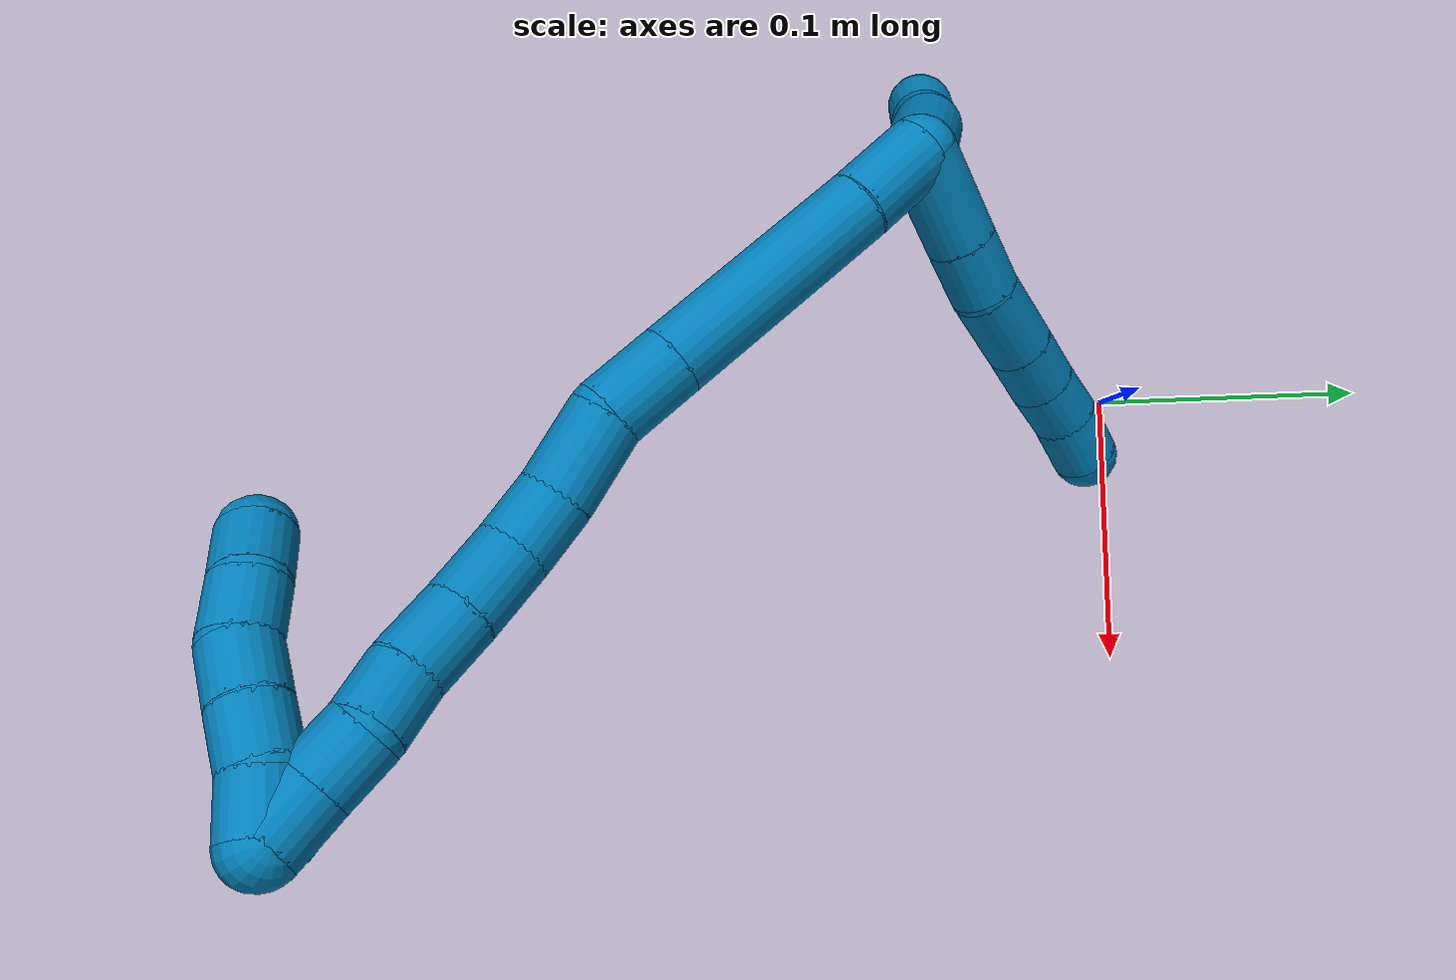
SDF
<sdf version="1.7">
 <world name="default">
  <model name="9">
   <static>0</static>
   <link name="9">
    <collision name="collision-cylinder-e_1_2_8">
     <pose>-0.015703 -0.006328 0.006768 0.751819 -1.03771 -0.443349</pose>
     <geometry><cylinder><radius>0.0125</radius><length>0.036466</length></cylinder></geometry>
     <surface>
      <friction><ode><mu>1.16</mu><mu2>1.16</mu2><slip1>0</slip1><slip2>0</slip2></ode></friction>
      <contact><ode><kp>1e+06</kp><kd>1</kd><max_vel>0</max_vel><min_depth>0.001</min_depth></ode></contact>
     </surface>
    </collision>
    <visual name="visual-cylinder-e_1_2_8">
     <pose>-0.015703 -0.006328 0.006768 0.751819 -1.03771 -0.443349</pose>
     <geometry><cylinder><radius>0.0125</radius><length>0.036466</length></cylinder></geometry>
     <material><ambient>0 0.490196 0.709804 1</ambient></material>
    </visual>
    <collision name="collision-cylinder-e_2_8_9">
     <pose>-0.040973 -0.016247 0.017644 0.71833 -1.0525 -0.429466</pose>
     <geometry><cylinder><radius>0.0125</radius><length>0.022026</length></cylinder></geometry>
     <surface>
      <friction><ode><mu>1.16</mu><mu2>1.16</mu2><slip1>0</slip1><slip2>0</slip2></ode></friction>
      <contact><ode><kp>1e+06</kp><kd>1</kd><max_vel>0</max_vel><min_depth>0.001</min_depth></ode></contact>
     </surface>
    </collision>
    <visual name="visual-cylinder-e_2_8_9">
     <pose>-0.040973 -0.016247 0.017644 0.71833 -1.0525 -0.429466</pose>
     <geometry><cylinder><radius>0.0125</radius><length>0.022026</length></cylinder></geometry>
     <material><ambient>0 0.490196 0.709804 1</ambient></material>
    </visual>
    <collision name="collision-cylinder-e_3_9_10">
     <pose>-0.063991 -0.022041 0.027043 0.39458 -1.16797 -0.262687</pose>
     <geometry><cylinder><radius>0.0125</radius><length>0.029244</length></cylinder></geometry>
     <surface>
      <friction><ode><mu>1.16</mu><mu2>1.16</mu2><slip1>0</slip1><slip2>0</slip2></ode></friction>
      <contact><ode><kp>1e+06</kp><kd>1</kd><max_vel>0</max_vel><min_depth>0.001</min_depth></ode></contact>
     </surface>
    </collision>
    <visual name="visual-cylinder-e_3_9_10">
     <pose>-0.063991 -0.022041 0.027043 0.39458 -1.16797 -0.262687</pose>
     <geometry><cylinder><radius>0.0125</radius><length>0.029244</length></cylinder></geometry>
     <material><ambient>0 0.490196 0.709804 1</ambient></material>
    </visual>
    <collision name="collision-cylinder-e_4_10_11">
     <pose>-0.086974 -0.025782 0.036247 0.374291 -1.15546 -0.245657</pose>
     <geometry><cylinder><radius>0.0125</radius><length>0.020835</length></cylinder></geometry>
     <surface>
      <friction><ode><mu>1.16</mu><mu2>1.16</mu2><slip1>0</slip1><slip2>0</slip2></ode></friction>
      <contact><ode><kp>1e+06</kp><kd>1</kd><max_vel>0</max_vel><min_depth>0.001</min_depth></ode></contact>
     </surface>
    </collision>
    <visual name="visual-cylinder-e_4_10_11">
     <pose>-0.086974 -0.025782 0.036247 0.374291 -1.15546 -0.245657</pose>
     <geometry><cylinder><radius>0.0125</radius><length>0.020835</length></cylinder></geometry>
     <material><ambient>0 0.490196 0.709804 1</ambient></material>
    </visual>
    <collision name="collision-cylinder-e_5_11_12">
     <pose>-0.105856 -0.028966 0.043438 0.465747 -1.19686 -0.320653</pose>
     <geometry><cylinder><radius>0.0125</radius><length>0.020087</length></cylinder></geometry>
     <surface>
      <friction><ode><mu>1.16</mu><mu2>1.16</mu2><slip1>0</slip1><slip2>0</slip2></ode></friction>
      <contact><ode><kp>1e+06</kp><kd>1</kd><max_vel>0</max_vel><min_depth>0.001</min_depth></ode></contact>
     </surface>
    </collision>
    <visual name="visual-cylinder-e_5_11_12">
     <pose>-0.105856 -0.028966 0.043438 0.465747 -1.19686 -0.320653</pose>
     <geometry><cylinder><radius>0.0125</radius><length>0.020087</length></cylinder></geometry>
     <material><ambient>0 0.490196 0.709804 1</ambient></material>
    </visual>
    <collision name="collision-cylinder-e_6_12_6">
     <pose>-0.124738 -0.033473 0.050565 0.638851 -1.10478 -0.40224</pose>
     <geometry><cylinder><radius>0.0125</radius><length>0.021342</length></cylinder></geometry>
     <surface>
      <friction><ode><mu>1.16</mu><mu2>1.16</mu2><slip1>0</slip1><slip2>0</slip2></ode></friction>
      <contact><ode><kp>1e+06</kp><kd>1</kd><max_vel>0</max_vel><min_depth>0.001</min_depth></ode></contact>
     </surface>
    </collision>
    <visual name="visual-cylinder-e_6_12_6">
     <pose>-0.124738 -0.033473 0.050565 0.638851 -1.10478 -0.40224</pose>
     <geometry><cylinder><radius>0.0125</radius><length>0.021342</length></cylinder></geometry>
     <material><ambient>0 0.490196 0.709804 1</ambient></material>
    </visual>
    <collision name="collision-cylinder-e_1_2_13">
     <pose>-0.010575 0.020161 0.01244 -1.01795 -0.419857 0.236677</pose>
     <geometry><cylinder><radius>0.0125</radius><length>0.051886</length></cylinder></geometry>
     <surface>
      <friction><ode><mu>1.16</mu><mu2>1.16</mu2><slip1>0</slip1><slip2>0</slip2></ode></friction>
      <contact><ode><kp>1e+06</kp><kd>1</kd><max_vel>0</max_vel><min_depth>0.001</min_depth></ode></contact>
     </surface>
    </collision>
    <visual name="visual-cylinder-e_1_2_13">
     <pose>-0.010575 0.020161 0.01244 -1.01795 -0.419857 0.236677</pose>
     <geometry><cylinder><radius>0.0125</radius><length>0.051886</length></cylinder></geometry>
     <material><ambient>0 0.490196 0.709804 1</ambient></material>
    </visual>
    <collision name="collision-cylinder-e_2_13_14">
     <pose>-0.025817 0.04915 0.032179 -0.879886 -0.386829 0.18387</pose>
     <geometry><cylinder><radius>0.0125</radius><length>0.024738</length></cylinder></geometry>
     <surface>
      <friction><ode><mu>1.16</mu><mu2>1.16</mu2><slip1>0</slip1><slip2>0</slip2></ode></friction>
      <contact><ode><kp>1e+06</kp><kd>1</kd><max_vel>0</max_vel><min_depth>0.001</min_depth></ode></contact>
     </surface>
    </collision>
    <visual name="visual-cylinder-e_2_13_14">
     <pose>-0.025817 0.04915 0.032179 -0.879886 -0.386829 0.18387</pose>
     <geometry><cylinder><radius>0.0125</radius><length>0.024738</length></cylinder></geometry>
     <material><ambient>0 0.490196 0.709804 1</ambient></material>
    </visual>
    <collision name="collision-cylinder-e_3_14_5">
     <pose>-0.033313 0.067797 0.045152 -1.04686 -0.244585 0.141627</pose>
     <geometry><cylinder><radius>0.0125</radius><length>0.023376</length></cylinder></geometry>
     <surface>
      <friction><ode><mu>1.16</mu><mu2>1.16</mu2><slip1>0</slip1><slip2>0</slip2></ode></friction>
      <contact><ode><kp>1e+06</kp><kd>1</kd><max_vel>0</max_vel><min_depth>0.001</min_depth></ode></contact>
     </surface>
    </collision>
    <visual name="visual-cylinder-e_3_14_5">
     <pose>-0.033313 0.067797 0.045152 -1.04686 -0.244585 0.141627</pose>
     <geometry><cylinder><radius>0.0125</radius><length>0.023376</length></cylinder></geometry>
     <material><ambient>0 0.490196 0.709804 1</ambient></material>
    </visual>
    <collision name="collision-cylinder-e_1_2_15">
     <pose>0.00696 -0.012397 0.006194 1.10746 0.465444 0.290999</pose>
     <geometry><cylinder><radius>0.0125</radius><length>0.031016</length></cylinder></geometry>
     <surface>
      <friction><ode><mu>1.16</mu><mu2>1.16</mu2><slip1>0</slip1><slip2>0</slip2></ode></friction>
      <contact><ode><kp>1e+06</kp><kd>1</kd><max_vel>0</max_vel><min_depth>0.001</min_depth></ode></contact>
     </surface>
    </collision>
    <visual name="visual-cylinder-e_1_2_15">
     <pose>0.00696 -0.012397 0.006194 1.10746 0.465444 0.290999</pose>
     <geometry><cylinder><radius>0.0125</radius><length>0.031016</length></cylinder></geometry>
     <material><ambient>0 0.490196 0.709804 1</ambient></material>
    </visual>
    <collision name="collision-cylinder-e_2_15_16">
     <pose>0.032629 -0.056227 0.031361 1.02771 0.471253 0.269384</pose>
     <geometry><cylinder><radius>0.0125</radius><length>0.082414</length></cylinder></geometry>
     <surface>
      <friction><ode><mu>1.16</mu><mu2>1.16</mu2><slip1>0</slip1><slip2>0</slip2></ode></friction>
      <contact><ode><kp>1e+06</kp><kd>1</kd><max_vel>0</max_vel><min_depth>0.001</min_depth></ode></contact>
     </surface>
    </collision>
    <visual name="visual-cylinder-e_2_15_16">
     <pose>0.032629 -0.056227 0.031361 1.02771 0.471253 0.269384</pose>
     <geometry><cylinder><radius>0.0125</radius><length>0.082414</length></cylinder></geometry>
     <material><ambient>0 0.490196 0.709804 1</ambient></material>
    </visual>
    <collision name="collision-cylinder-e_3_16_17">
     <pose>0.057468 -0.098008 0.056584 1.02754 0.469401 0.268247</pose>
     <geometry><cylinder><radius>0.0125</radius><length>0.027109</length></cylinder></geometry>
     <surface>
      <friction><ode><mu>1.16</mu><mu2>1.16</mu2><slip1>0</slip1><slip2>0</slip2></ode></friction>
      <contact><ode><kp>1e+06</kp><kd>1</kd><max_vel>0</max_vel><min_depth>0.001</min_depth></ode></contact>
     </surface>
    </collision>
    <visual name="visual-cylinder-e_3_16_17">
     <pose>0.057468 -0.098008 0.056584 1.02754 0.469401 0.268247</pose>
     <geometry><cylinder><radius>0.0125</radius><length>0.027109</length></cylinder></geometry>
     <material><ambient>0 0.490196 0.709804 1</ambient></material>
    </visual>
    <collision name="collision-cylinder-e_4_17_18">
     <pose>0.065819 -0.121097 0.069903 1.0642 0.151155 0.089102</pose>
     <geometry><cylinder><radius>0.0125</radius><length>0.029478</length></cylinder></geometry>
     <surface>
      <friction><ode><mu>1.16</mu><mu2>1.16</mu2><slip1>0</slip1><slip2>0</slip2></ode></friction>
      <contact><ode><kp>1e+06</kp><kd>1</kd><max_vel>0</max_vel><min_depth>0.001</min_depth></ode></contact>
     </surface>
    </collision>
    <visual name="visual-cylinder-e_4_17_18">
     <pose>0.065819 -0.121097 0.069903 1.0642 0.151155 0.089102</pose>
     <geometry><cylinder><radius>0.0125</radius><length>0.029478</length></cylinder></geometry>
     <material><ambient>0 0.490196 0.709804 1</ambient></material>
    </visual>
    <collision name="collision-cylinder-e_5_18_19">
     <pose>0.071128 -0.143193 0.081042 1.16052 0.294058 0.193561</pose>
     <geometry><cylinder><radius>0.0125</radius><length>0.02132</length></cylinder></geometry>
     <surface>
      <friction><ode><mu>1.16</mu><mu2>1.16</mu2><slip1>0</slip1><slip2>0</slip2></ode></friction>
      <contact><ode><kp>1e+06</kp><kd>1</kd><max_vel>0</max_vel><min_depth>0.001</min_depth></ode></contact>
     </surface>
    </collision>
    <visual name="visual-cylinder-e_5_18_19">
     <pose>0.071128 -0.143193 0.081042 1.16052 0.294058 0.193561</pose>
     <geometry><cylinder><radius>0.0125</radius><length>0.02132</length></cylinder></geometry>
     <material><ambient>0 0.490196 0.709804 1</ambient></material>
    </visual>
    <collision name="collision-cylinder-e_6_19_20">
     <pose>0.079058 -0.163841 0.087477 1.36424 0.397228 0.324062</pose>
     <geometry><cylinder><radius>0.0125</radius><length>0.025024</length></cylinder></geometry>
     <surface>
      <friction><ode><mu>1.16</mu><mu2>1.16</mu2><slip1>0</slip1><slip2>0</slip2></ode></friction>
      <contact><ode><kp>1e+06</kp><kd>1</kd><max_vel>0</max_vel><min_depth>0.001</min_depth></ode></contact>
     </surface>
    </collision>
    <visual name="visual-cylinder-e_6_19_20">
     <pose>0.079058 -0.163841 0.087477 1.36424 0.397228 0.324062</pose>
     <geometry><cylinder><radius>0.0125</radius><length>0.025024</length></cylinder></geometry>
     <material><ambient>0 0.490196 0.709804 1</ambient></material>
    </visual>
    <collision name="collision-cylinder-e_7_20_21">
     <pose>0.088778 -0.185427 0.092065 1.3582 0.433917 0.352162</pose>
     <geometry><cylinder><radius>0.0125</radius><length>0.023211</length></cylinder></geometry>
     <surface>
      <friction><ode><mu>1.16</mu><mu2>1.16</mu2><slip1>0</slip1><slip2>0</slip2></ode></friction>
      <contact><ode><kp>1e+06</kp><kd>1</kd><max_vel>0</max_vel><min_depth>0.001</min_depth></ode></contact>
     </surface>
    </collision>
    <visual name="visual-cylinder-e_7_20_21">
     <pose>0.088778 -0.185427 0.092065 1.3582 0.433917 0.352162</pose>
     <geometry><cylinder><radius>0.0125</radius><length>0.023211</length></cylinder></geometry>
     <material><ambient>0 0.490196 0.709804 1</ambient></material>
    </visual>
    <collision name="collision-cylinder-e_8_21_22">
     <pose>0.096756 -0.205197 0.09549 1.44461 0.313693 0.276918</pose>
     <geometry><cylinder><radius>0.0125</radius><length>0.020088</length></cylinder></geometry>
     <surface>
      <friction><ode><mu>1.16</mu><mu2>1.16</mu2><slip1>0</slip1><slip2>0</slip2></ode></friction>
      <contact><ode><kp>1e+06</kp><kd>1</kd><max_vel>0</max_vel><min_depth>0.001</min_depth></ode></contact>
     </surface>
    </collision>
    <visual name="visual-cylinder-e_8_21_22">
     <pose>0.096756 -0.205197 0.09549 1.44461 0.313693 0.276918</pose>
     <geometry><cylinder><radius>0.0125</radius><length>0.020088</length></cylinder></geometry>
     <material><ambient>0 0.490196 0.709804 1</ambient></material>
    </visual>
    <collision name="collision-cylinder-e_9_22_23">
     <pose>0.10356 -0.223069 0.100851 1.1108 0.376581 0.2354</pose>
     <geometry><cylinder><radius>0.0125</radius><length>0.020148</length></cylinder></geometry>
     <surface>
      <friction><ode><mu>1.16</mu><mu2>1.16</mu2><slip1>0</slip1><slip2>0</slip2></ode></friction>
      <contact><ode><kp>1e+06</kp><kd>1</kd><max_vel>0</max_vel><min_depth>0.001</min_depth></ode></contact>
     </surface>
    </collision>
    <visual name="visual-cylinder-e_9_22_23">
     <pose>0.10356 -0.223069 0.100851 1.1108 0.376581 0.2354</pose>
     <geometry><cylinder><radius>0.0125</radius><length>0.020148</length></cylinder></geometry>
     <material><ambient>0 0.490196 0.709804 1</ambient></material>
    </visual>
    <collision name="collision-cylinder-e_10_23_1">
     <pose>0.111121 -0.240329 0.10792 1.25357 0.391835 0.285499</pose>
     <geometry><cylinder><radius>0.0125</radius><length>0.020193</length></cylinder></geometry>
     <surface>
      <friction><ode><mu>1.16</mu><mu2>1.16</mu2><slip1>0</slip1><slip2>0</slip2></ode></friction>
      <contact><ode><kp>1e+06</kp><kd>1</kd><max_vel>0</max_vel><min_depth>0.001</min_depth></ode></contact>
     </surface>
    </collision>
    <visual name="visual-cylinder-e_10_23_1">
     <pose>0.111121 -0.240329 0.10792 1.25357 0.391835 0.285499</pose>
     <geometry><cylinder><radius>0.0125</radius><length>0.020193</length></cylinder></geometry>
     <material><ambient>0 0.490196 0.709804 1</ambient></material>
    </visual>
    <collision name="collision-cylinder-e_1_1_24">
     <pose>0.111501 -0.245424 0.119416 -0.413863 -0.354895 0.075262</pose>
     <geometry><cylinder><radius>0.0125</radius><length>0.02</length></cylinder></geometry>
     <surface>
      <friction><ode><mu>1.16</mu><mu2>1.16</mu2><slip1>0</slip1><slip2>0</slip2></ode></friction>
      <contact><ode><kp>1e+06</kp><kd>1</kd><max_vel>0</max_vel><min_depth>0.001</min_depth></ode></contact>
     </surface>
    </collision>
    <visual name="visual-cylinder-e_1_1_24">
     <pose>0.111501 -0.245424 0.119416 -0.413863 -0.354895 0.075262</pose>
     <geometry><cylinder><radius>0.0125</radius><length>0.02</length></cylinder></geometry>
     <material><ambient>0 0.490196 0.709804 1</ambient></material>
    </visual>
    <collision name="collision-cylinder-e_2_24_25">
     <pose>0.105476 -0.238312 0.137075 -0.352856 -0.257862 0.04622</pose>
     <geometry><cylinder><radius>0.0125</radius><length>0.02</length></cylinder></geometry>
     <surface>
      <friction><ode><mu>1.16</mu><mu2>1.16</mu2><slip1>0</slip1><slip2>0</slip2></ode></friction>
      <contact><ode><kp>1e+06</kp><kd>1</kd><max_vel>0</max_vel><min_depth>0.001</min_depth></ode></contact>
     </surface>
    </collision>
    <visual name="visual-cylinder-e_2_24_25">
     <pose>0.105476 -0.238312 0.137075 -0.352856 -0.257862 0.04622</pose>
     <geometry><cylinder><radius>0.0125</radius><length>0.02</length></cylinder></geometry>
     <material><ambient>0 0.490196 0.709804 1</ambient></material>
    </visual>
    <collision name="collision-cylinder-e_3_25_26">
     <pose>0.098266 -0.231874 0.154437 -0.357524 -0.484737 0.089284</pose>
     <geometry><cylinder><radius>0.0125</radius><length>0.02</length></cylinder></geometry>
     <surface>
      <friction><ode><mu>1.16</mu><mu2>1.16</mu2><slip1>0</slip1><slip2>0</slip2></ode></friction>
      <contact><ode><kp>1e+06</kp><kd>1</kd><max_vel>0</max_vel><min_depth>0.001</min_depth></ode></contact>
     </surface>
    </collision>
    <visual name="visual-cylinder-e_3_25_26">
     <pose>0.098266 -0.231874 0.154437 -0.357524 -0.484737 0.089284</pose>
     <geometry><cylinder><radius>0.0125</radius><length>0.02</length></cylinder></geometry>
     <material><ambient>0 0.490196 0.709804 1</ambient></material>
    </visual>
    <collision name="collision-cylinder-e_4_26_27">
     <pose>0.091975 -0.225081 0.171873 -0.384062 -0.163903 0.031936</pose>
     <geometry><cylinder><radius>0.0125</radius><length>0.02</length></cylinder></geometry>
     <surface>
      <friction><ode><mu>1.16</mu><mu2>1.16</mu2><slip1>0</slip1><slip2>0</slip2></ode></friction>
      <contact><ode><kp>1e+06</kp><kd>1</kd><max_vel>0</max_vel><min_depth>0.001</min_depth></ode></contact>
     </surface>
    </collision>
    <visual name="visual-cylinder-e_4_26_27">
     <pose>0.091975 -0.225081 0.171873 -0.384062 -0.163903 0.031936</pose>
     <geometry><cylinder><radius>0.0125</radius><length>0.02</length></cylinder></geometry>
     <material><ambient>0 0.490196 0.709804 1</ambient></material>
    </visual>
    <collision name="collision-cylinder-e_5_27_4">
     <pose>0.088256 -0.218518 0.190371 -0.297417 -0.210228 0.031609</pose>
     <geometry><cylinder><radius>0.0125</radius><length>0.02</length></cylinder></geometry>
     <surface>
      <friction><ode><mu>1.16</mu><mu2>1.16</mu2><slip1>0</slip1><slip2>0</slip2></ode></friction>
      <contact><ode><kp>1e+06</kp><kd>1</kd><max_vel>0</max_vel><min_depth>0.001</min_depth></ode></contact>
     </surface>
    </collision>
    <visual name="visual-cylinder-e_5_27_4">
     <pose>0.088256 -0.218518 0.190371 -0.297417 -0.210228 0.031609</pose>
     <geometry><cylinder><radius>0.0125</radius><length>0.02</length></cylinder></geometry>
     <material><ambient>0 0.490196 0.709804 1</ambient></material>
    </visual>
    <collision name="collision-cylinder-e_1_1_28">
     <pose>0.117472 -0.239511 0.110876 -1.56616 0.252237 -0.251083</pose>
     <geometry><cylinder><radius>0.0125</radius><length>0.02</length></cylinder></geometry>
     <surface>
      <friction><ode><mu>1.16</mu><mu2>1.16</mu2><slip1>0</slip1><slip2>0</slip2></ode></friction>
      <contact><ode><kp>1e+06</kp><kd>1</kd><max_vel>0</max_vel><min_depth>0.001</min_depth></ode></contact>
     </surface>
    </collision>
    <visual name="visual-cylinder-e_1_1_28">
     <pose>0.117472 -0.239511 0.110876 -1.56616 0.252237 -0.251083</pose>
     <geometry><cylinder><radius>0.0125</radius><length>0.02</length></cylinder></geometry>
     <material><ambient>0 0.490196 0.709804 1</ambient></material>
    </visual>
    <collision name="collision-cylinder-e_2_28_29">
     <pose>0.123546 -0.220758 0.113142 -1.3306 0.365946 -0.288365</pose>
     <geometry><cylinder><radius>0.0125</radius><length>0.02</length></cylinder></geometry>
     <surface>
      <friction><ode><mu>1.16</mu><mu2>1.16</mu2><slip1>0</slip1><slip2>0</slip2></ode></friction>
      <contact><ode><kp>1e+06</kp><kd>1</kd><max_vel>0</max_vel><min_depth>0.001</min_depth></ode></contact>
     </surface>
    </collision>
    <visual name="visual-cylinder-e_2_28_29">
     <pose>0.123546 -0.220758 0.113142 -1.3306 0.365946 -0.288365</pose>
     <geometry><cylinder><radius>0.0125</radius><length>0.02</length></cylinder></geometry>
     <material><ambient>0 0.490196 0.709804 1</ambient></material>
    </visual>
    <collision name="collision-cylinder-e_3_29_30">
     <pose>0.130325 -0.202602 0.118046 -1.28377 0.325761 -0.24445</pose>
     <geometry><cylinder><radius>0.0125</radius><length>0.02</length></cylinder></geometry>
     <surface>
      <friction><ode><mu>1.16</mu><mu2>1.16</mu2><slip1>0</slip1><slip2>0</slip2></ode></friction>
      <contact><ode><kp>1e+06</kp><kd>1</kd><max_vel>0</max_vel><min_depth>0.001</min_depth></ode></contact>
     </surface>
    </collision>
    <visual name="visual-cylinder-e_3_29_30">
     <pose>0.130325 -0.202602 0.118046 -1.28377 0.325761 -0.24445</pose>
     <geometry><cylinder><radius>0.0125</radius><length>0.02</length></cylinder></geometry>
     <material><ambient>0 0.490196 0.709804 1</ambient></material>
    </visual>
    <collision name="collision-cylinder-e_4_30_31">
     <pose>0.13427 -0.18366 0.122249 -1.41771 0.07455 -0.063937</pose>
     <geometry><cylinder><radius>0.0125</radius><length>0.02</length></cylinder></geometry>
     <surface>
      <friction><ode><mu>1.16</mu><mu2>1.16</mu2><slip1>0</slip1><slip2>0</slip2></ode></friction>
      <contact><ode><kp>1e+06</kp><kd>1</kd><max_vel>0</max_vel><min_depth>0.001</min_depth></ode></contact>
     </surface>
    </collision>
    <visual name="visual-cylinder-e_4_30_31">
     <pose>0.13427 -0.18366 0.122249 -1.41771 0.07455 -0.063937</pose>
     <geometry><cylinder><radius>0.0125</radius><length>0.02</length></cylinder></geometry>
     <material><ambient>0 0.490196 0.709804 1</ambient></material>
    </visual>
    <collision name="collision-cylinder-e_5_31_3">
     <pose>0.1352 -0.164544 0.12754 -1.18414 0.018558 -0.012482</pose>
     <geometry><cylinder><radius>0.0125</radius><length>0.02</length></cylinder></geometry>
     <surface>
      <friction><ode><mu>1.16</mu><mu2>1.16</mu2><slip1>0</slip1><slip2>0</slip2></ode></friction>
      <contact><ode><kp>1e+06</kp><kd>1</kd><max_vel>0</max_vel><min_depth>0.001</min_depth></ode></contact>
     </surface>
    </collision>
    <visual name="visual-cylinder-e_5_31_3">
     <pose>0.1352 -0.164544 0.12754 -1.18414 0.018558 -0.012482</pose>
     <geometry><cylinder><radius>0.0125</radius><length>0.02</length></cylinder></geometry>
     <material><ambient>0 0.490196 0.709804 1</ambient></material>
    </visual>
    <collision name="collision-sphere-3">
     <pose>0.135386 -0.155284 0.13131 0 -0 0</pose>
     <geometry><sphere><radius>0.0125</radius></sphere></geometry>
     <surface>
      <friction><ode><mu>1.16</mu><mu2>1.16</mu2><slip1>0</slip1><slip2>0</slip2></ode></friction>
      <contact><ode><kp>1e+06</kp><kd>1</kd><max_vel>0</max_vel><min_depth>0.001</min_depth></ode></contact>
     </surface>
    </collision>
    <visual name="visual-sphere-3">
     <pose>0.135386 -0.155284 0.13131 0 -0 0</pose>
     <geometry><sphere><radius>0.0125</radius></sphere></geometry>
     <material><ambient>0 0.490196 0.709804 1</ambient></material>
    </visual>
    <collision name="collision-sphere-31">
     <pose>0.135015 -0.173804 0.12377 0 -0 0</pose>
     <geometry><sphere><radius>0.0125</radius></sphere></geometry>
     <surface>
      <friction><ode><mu>1.16</mu><mu2>1.16</mu2><slip1>0</slip1><slip2>0</slip2></ode></friction>
      <contact><ode><kp>1e+06</kp><kd>1</kd><max_vel>0</max_vel><min_depth>0.001</min_depth></ode></contact>
     </surface>
    </collision>
    <visual name="visual-sphere-31">
     <pose>0.135015 -0.173804 0.12377 0 -0 0</pose>
     <geometry><sphere><radius>0.0125</radius></sphere></geometry>
     <material><ambient>0 0.490196 0.709804 1</ambient></material>
    </visual>
    <collision name="collision-sphere-30">
     <pose>0.133525 -0.193515 0.120728 0 -0 0</pose>
     <geometry><sphere><radius>0.0125</radius></sphere></geometry>
     <surface>
      <friction><ode><mu>1.16</mu><mu2>1.16</mu2><slip1>0</slip1><slip2>0</slip2></ode></friction>
      <contact><ode><kp>1e+06</kp><kd>1</kd><max_vel>0</max_vel><min_depth>0.001</min_depth></ode></contact>
     </surface>
    </collision>
    <visual name="visual-sphere-30">
     <pose>0.133525 -0.193515 0.120728 0 -0 0</pose>
     <geometry><sphere><radius>0.0125</radius></sphere></geometry>
     <material><ambient>0 0.490196 0.709804 1</ambient></material>
    </visual>
    <collision name="collision-sphere-29">
     <pose>0.127124 -0.211688 0.115364 0 -0 0</pose>
     <geometry><sphere><radius>0.0125</radius></sphere></geometry>
     <surface>
      <friction><ode><mu>1.16</mu><mu2>1.16</mu2><slip1>0</slip1><slip2>0</slip2></ode></friction>
      <contact><ode><kp>1e+06</kp><kd>1</kd><max_vel>0</max_vel><min_depth>0.001</min_depth></ode></contact>
     </surface>
    </collision>
    <visual name="visual-sphere-29">
     <pose>0.127124 -0.211688 0.115364 0 -0 0</pose>
     <geometry><sphere><radius>0.0125</radius></sphere></geometry>
     <material><ambient>0 0.490196 0.709804 1</ambient></material>
    </visual>
    <collision name="collision-sphere-28">
     <pose>0.119968 -0.229828 0.110921 0 -0 0</pose>
     <geometry><sphere><radius>0.0125</radius></sphere></geometry>
     <surface>
      <friction><ode><mu>1.16</mu><mu2>1.16</mu2><slip1>0</slip1><slip2>0</slip2></ode></friction>
      <contact><ode><kp>1e+06</kp><kd>1</kd><max_vel>0</max_vel><min_depth>0.001</min_depth></ode></contact>
     </surface>
    </collision>
    <visual name="visual-sphere-28">
     <pose>0.119968 -0.229828 0.110921 0 -0 0</pose>
     <geometry><sphere><radius>0.0125</radius></sphere></geometry>
     <material><ambient>0 0.490196 0.709804 1</ambient></material>
    </visual>
    <collision name="collision-sphere-4">
     <pose>0.08617 -0.215652 0.199721 0 -0 0</pose>
     <geometry><sphere><radius>0.0125</radius></sphere></geometry>
     <surface>
      <friction><ode><mu>1.16</mu><mu2>1.16</mu2><slip1>0</slip1><slip2>0</slip2></ode></friction>
      <contact><ode><kp>1e+06</kp><kd>1</kd><max_vel>0</max_vel><min_depth>0.001</min_depth></ode></contact>
     </surface>
    </collision>
    <visual name="visual-sphere-4">
     <pose>0.08617 -0.215652 0.199721 0 -0 0</pose>
     <geometry><sphere><radius>0.0125</radius></sphere></geometry>
     <material><ambient>0 0.490196 0.709804 1</ambient></material>
    </visual>
    <collision name="collision-sphere-27">
     <pose>0.090343 -0.221384 0.18102 0 -0 0</pose>
     <geometry><sphere><radius>0.0125</radius></sphere></geometry>
     <surface>
      <friction><ode><mu>1.16</mu><mu2>1.16</mu2><slip1>0</slip1><slip2>0</slip2></ode></friction>
      <contact><ode><kp>1e+06</kp><kd>1</kd><max_vel>0</max_vel><min_depth>0.001</min_depth></ode></contact>
     </surface>
    </collision>
    <visual name="visual-sphere-27">
     <pose>0.090343 -0.221384 0.18102 0 -0 0</pose>
     <geometry><sphere><radius>0.0125</radius></sphere></geometry>
     <material><ambient>0 0.490196 0.709804 1</ambient></material>
    </visual>
    <collision name="collision-sphere-26">
     <pose>0.093607 -0.228777 0.162726 0 -0 0</pose>
     <geometry><sphere><radius>0.0125</radius></sphere></geometry>
     <surface>
      <friction><ode><mu>1.16</mu><mu2>1.16</mu2><slip1>0</slip1><slip2>0</slip2></ode></friction>
      <contact><ode><kp>1e+06</kp><kd>1</kd><max_vel>0</max_vel><min_depth>0.001</min_depth></ode></contact>
     </surface>
    </collision>
    <visual name="visual-sphere-26">
     <pose>0.093607 -0.228777 0.162726 0 -0 0</pose>
     <geometry><sphere><radius>0.0125</radius></sphere></geometry>
     <material><ambient>0 0.490196 0.709804 1</ambient></material>
    </visual>
    <collision name="collision-sphere-25">
     <pose>0.102926 -0.23497 0.146149 0 -0 0</pose>
     <geometry><sphere><radius>0.0125</radius></sphere></geometry>
     <surface>
      <friction><ode><mu>1.16</mu><mu2>1.16</mu2><slip1>0</slip1><slip2>0</slip2></ode></friction>
      <contact><ode><kp>1e+06</kp><kd>1</kd><max_vel>0</max_vel><min_depth>0.001</min_depth></ode></contact>
     </surface>
    </collision>
    <visual name="visual-sphere-25">
     <pose>0.102926 -0.23497 0.146149 0 -0 0</pose>
     <geometry><sphere><radius>0.0125</radius></sphere></geometry>
     <material><ambient>0 0.490196 0.709804 1</ambient></material>
    </visual>
    <collision name="collision-sphere-24">
     <pose>0.108026 -0.241653 0.128002 0 -0 0</pose>
     <geometry><sphere><radius>0.0125</radius></sphere></geometry>
     <surface>
      <friction><ode><mu>1.16</mu><mu2>1.16</mu2><slip1>0</slip1><slip2>0</slip2></ode></friction>
      <contact><ode><kp>1e+06</kp><kd>1</kd><max_vel>0</max_vel><min_depth>0.001</min_depth></ode></contact>
     </surface>
    </collision>
    <visual name="visual-sphere-24">
     <pose>0.108026 -0.241653 0.128002 0 -0 0</pose>
     <geometry><sphere><radius>0.0125</radius></sphere></geometry>
     <material><ambient>0 0.490196 0.709804 1</ambient></material>
    </visual>
    <collision name="collision-sphere-1">
     <pose>0.114976 -0.249195 0.110831 0 -0 0</pose>
     <geometry><sphere><radius>0.0125</radius></sphere></geometry>
     <surface>
      <friction><ode><mu>1.16</mu><mu2>1.16</mu2><slip1>0</slip1><slip2>0</slip2></ode></friction>
      <contact><ode><kp>1e+06</kp><kd>1</kd><max_vel>0</max_vel><min_depth>0.001</min_depth></ode></contact>
     </surface>
    </collision>
    <visual name="visual-sphere-1">
     <pose>0.114976 -0.249195 0.110831 0 -0 0</pose>
     <geometry><sphere><radius>0.0125</radius></sphere></geometry>
     <material><ambient>0 0.490196 0.709804 1</ambient></material>
    </visual>
    <collision name="collision-sphere-23">
     <pose>0.107265 -0.231463 0.10501 0 -0 0</pose>
     <geometry><sphere><radius>0.0125</radius></sphere></geometry>
     <surface>
      <friction><ode><mu>1.16</mu><mu2>1.16</mu2><slip1>0</slip1><slip2>0</slip2></ode></friction>
      <contact><ode><kp>1e+06</kp><kd>1</kd><max_vel>0</max_vel><min_depth>0.001</min_depth></ode></contact>
     </surface>
    </collision>
    <visual name="visual-sphere-23">
     <pose>0.107265 -0.231463 0.10501 0 -0 0</pose>
     <geometry><sphere><radius>0.0125</radius></sphere></geometry>
     <material><ambient>0 0.490196 0.709804 1</ambient></material>
    </visual>
    <collision name="collision-sphere-22">
     <pose>0.099856 -0.214675 0.096692 0 -0 0</pose>
     <geometry><sphere><radius>0.0125</radius></sphere></geometry>
     <surface>
      <friction><ode><mu>1.16</mu><mu2>1.16</mu2><slip1>0</slip1><slip2>0</slip2></ode></friction>
      <contact><ode><kp>1e+06</kp><kd>1</kd><max_vel>0</max_vel><min_depth>0.001</min_depth></ode></contact>
     </surface>
    </collision>
    <visual name="visual-sphere-22">
     <pose>0.099856 -0.214675 0.096692 0 -0 0</pose>
     <geometry><sphere><radius>0.0125</radius></sphere></geometry>
     <material><ambient>0 0.490196 0.709804 1</ambient></material>
    </visual>
    <collision name="collision-sphere-21">
     <pose>0.093657 -0.195719 0.094287 0 -0 0</pose>
     <geometry><sphere><radius>0.0125</radius></sphere></geometry>
     <surface>
      <friction><ode><mu>1.16</mu><mu2>1.16</mu2><slip1>0</slip1><slip2>0</slip2></ode></friction>
      <contact><ode><kp>1e+06</kp><kd>1</kd><max_vel>0</max_vel><min_depth>0.001</min_depth></ode></contact>
     </surface>
    </collision>
    <visual name="visual-sphere-21">
     <pose>0.093657 -0.195719 0.094287 0 -0 0</pose>
     <geometry><sphere><radius>0.0125</radius></sphere></geometry>
     <material><ambient>0 0.490196 0.709804 1</ambient></material>
    </visual>
    <collision name="collision-sphere-12">
     <pose>-0.115205 -0.030614 0.046716 0 -0 0</pose>
     <geometry><sphere><radius>0.0125</radius></sphere></geometry>
     <surface>
      <friction><ode><mu>1.16</mu><mu2>1.16</mu2><slip1>0</slip1><slip2>0</slip2></ode></friction>
      <contact><ode><kp>1e+06</kp><kd>1</kd><max_vel>0</max_vel><min_depth>0.001</min_depth></ode></contact>
     </surface>
    </collision>
    <visual name="visual-sphere-12">
     <pose>-0.115205 -0.030614 0.046716 0 -0 0</pose>
     <geometry><sphere><radius>0.0125</radius></sphere></geometry>
     <material><ambient>0 0.490196 0.709804 1</ambient></material>
    </visual>
    <collision name="collision-sphere-11">
     <pose>-0.096506 -0.027319 0.04016 0 -0 0</pose>
     <geometry><sphere><radius>0.0125</radius></sphere></geometry>
     <surface>
      <friction><ode><mu>1.16</mu><mu2>1.16</mu2><slip1>0</slip1><slip2>0</slip2></ode></friction>
      <contact><ode><kp>1e+06</kp><kd>1</kd><max_vel>0</max_vel><min_depth>0.001</min_depth></ode></contact>
     </surface>
    </collision>
    <visual name="visual-sphere-11">
     <pose>-0.096506 -0.027319 0.04016 0 -0 0</pose>
     <geometry><sphere><radius>0.0125</radius></sphere></geometry>
     <material><ambient>0 0.490196 0.709804 1</ambient></material>
    </visual>
    <collision name="collision-sphere-10">
     <pose>-0.077442 -0.024245 0.032335 0 -0 0</pose>
     <geometry><sphere><radius>0.0125</radius></sphere></geometry>
     <surface>
      <friction><ode><mu>1.16</mu><mu2>1.16</mu2><slip1>0</slip1><slip2>0</slip2></ode></friction>
      <contact><ode><kp>1e+06</kp><kd>1</kd><max_vel>0</max_vel><min_depth>0.001</min_depth></ode></contact>
     </surface>
    </collision>
    <visual name="visual-sphere-10">
     <pose>-0.077442 -0.024245 0.032335 0 -0 0</pose>
     <geometry><sphere><radius>0.0125</radius></sphere></geometry>
     <material><ambient>0 0.490196 0.709804 1</ambient></material>
    </visual>
    <collision name="collision-sphere-9">
     <pose>-0.050539 -0.019838 0.021752 0 -0 0</pose>
     <geometry><sphere><radius>0.0125</radius></sphere></geometry>
     <surface>
      <friction><ode><mu>1.16</mu><mu2>1.16</mu2><slip1>0</slip1><slip2>0</slip2></ode></friction>
      <contact><ode><kp>1e+06</kp><kd>1</kd><max_vel>0</max_vel><min_depth>0.001</min_depth></ode></contact>
     </surface>
    </collision>
    <visual name="visual-sphere-9">
     <pose>-0.050539 -0.019838 0.021752 0 -0 0</pose>
     <geometry><sphere><radius>0.0125</radius></sphere></geometry>
     <material><ambient>0 0.490196 0.709804 1</ambient></material>
    </visual>
    <collision name="collision-sphere-2">
     <geometry><sphere><radius>0.0125</radius></sphere></geometry>
     <surface>
      <friction><ode><mu>1.16</mu><mu2>1.16</mu2><slip1>0</slip1><slip2>0</slip2></ode></friction>
      <contact><ode><kp>1e+06</kp><kd>1</kd><max_vel>0</max_vel><min_depth>0.001</min_depth></ode></contact>
     </surface>
    </collision>
    <visual name="visual-sphere-2">
     <geometry><sphere><radius>0.0125</radius></sphere></geometry>
     <material><ambient>0 0.490196 0.709804 1</ambient></material>
    </visual>
    <collision name="collision-sphere-19">
     <pose>0.074218 -0.152549 0.085111 0 -0 0</pose>
     <geometry><sphere><radius>0.0125</radius></sphere></geometry>
     <surface>
      <friction><ode><mu>1.16</mu><mu2>1.16</mu2><slip1>0</slip1><slip2>0</slip2></ode></friction>
      <contact><ode><kp>1e+06</kp><kd>1</kd><max_vel>0</max_vel><min_depth>0.001</min_depth></ode></contact>
     </surface>
    </collision>
    <visual name="visual-sphere-19">
     <pose>0.074218 -0.152549 0.085111 0 -0 0</pose>
     <geometry><sphere><radius>0.0125</radius></sphere></geometry>
     <material><ambient>0 0.490196 0.709804 1</ambient></material>
    </visual>
    <collision name="collision-sphere-8">
     <pose>-0.031406 -0.012657 0.013537 0 -0 0</pose>
     <geometry><sphere><radius>0.0125</radius></sphere></geometry>
     <surface>
      <friction><ode><mu>1.16</mu><mu2>1.16</mu2><slip1>0</slip1><slip2>0</slip2></ode></friction>
      <contact><ode><kp>1e+06</kp><kd>1</kd><max_vel>0</max_vel><min_depth>0.001</min_depth></ode></contact>
     </surface>
    </collision>
    <visual name="visual-sphere-8">
     <pose>-0.031406 -0.012657 0.013537 0 -0 0</pose>
     <geometry><sphere><radius>0.0125</radius></sphere></geometry>
     <material><ambient>0 0.490196 0.709804 1</ambient></material>
    </visual>
    <collision name="collision-sphere-6">
     <pose>-0.134271 -0.036332 0.054414 0 -0 0</pose>
     <geometry><sphere><radius>0.0125</radius></sphere></geometry>
     <surface>
      <friction><ode><mu>1.16</mu><mu2>1.16</mu2><slip1>0</slip1><slip2>0</slip2></ode></friction>
      <contact><ode><kp>1e+06</kp><kd>1</kd><max_vel>0</max_vel><min_depth>0.001</min_depth></ode></contact>
     </surface>
    </collision>
    <visual name="visual-sphere-6">
     <pose>-0.134271 -0.036332 0.054414 0 -0 0</pose>
     <geometry><sphere><radius>0.0125</radius></sphere></geometry>
     <material><ambient>0 0.490196 0.709804 1</ambient></material>
    </visual>
    <collision name="collision-sphere-13">
     <pose>-0.02115 0.040322 0.02488 0 -0 0</pose>
     <geometry><sphere><radius>0.0125</radius></sphere></geometry>
     <surface>
      <friction><ode><mu>1.16</mu><mu2>1.16</mu2><slip1>0</slip1><slip2>0</slip2></ode></friction>
      <contact><ode><kp>1e+06</kp><kd>1</kd><max_vel>0</max_vel><min_depth>0.001</min_depth></ode></contact>
     </surface>
    </collision>
    <visual name="visual-sphere-13">
     <pose>-0.02115 0.040322 0.02488 0 -0 0</pose>
     <geometry><sphere><radius>0.0125</radius></sphere></geometry>
     <material><ambient>0 0.490196 0.709804 1</ambient></material>
    </visual>
    <collision name="collision-sphere-14">
     <pose>-0.030483 0.057978 0.039479 0 -0 0</pose>
     <geometry><sphere><radius>0.0125</radius></sphere></geometry>
     <surface>
      <friction><ode><mu>1.16</mu><mu2>1.16</mu2><slip1>0</slip1><slip2>0</slip2></ode></friction>
      <contact><ode><kp>1e+06</kp><kd>1</kd><max_vel>0</max_vel><min_depth>0.001</min_depth></ode></contact>
     </surface>
    </collision>
    <visual name="visual-sphere-14">
     <pose>-0.030483 0.057978 0.039479 0 -0 0</pose>
     <geometry><sphere><radius>0.0125</radius></sphere></geometry>
     <material><ambient>0 0.490196 0.709804 1</ambient></material>
    </visual>
    <collision name="collision-sphere-5">
     <pose>-0.036143 0.077615 0.050826 0 -0 0</pose>
     <geometry><sphere><radius>0.0125</radius></sphere></geometry>
     <surface>
      <friction><ode><mu>1.16</mu><mu2>1.16</mu2><slip1>0</slip1><slip2>0</slip2></ode></friction>
      <contact><ode><kp>1e+06</kp><kd>1</kd><max_vel>0</max_vel><min_depth>0.001</min_depth></ode></contact>
     </surface>
    </collision>
    <visual name="visual-sphere-5">
     <pose>-0.036143 0.077615 0.050826 0 -0 0</pose>
     <geometry><sphere><radius>0.0125</radius></sphere></geometry>
     <material><ambient>0 0.490196 0.709804 1</ambient></material>
    </visual>
    <collision name="collision-sphere-15">
     <pose>0.013921 -0.024794 0.012388 0 -0 0</pose>
     <geometry><sphere><radius>0.0125</radius></sphere></geometry>
     <surface>
      <friction><ode><mu>1.16</mu><mu2>1.16</mu2><slip1>0</slip1><slip2>0</slip2></ode></friction>
      <contact><ode><kp>1e+06</kp><kd>1</kd><max_vel>0</max_vel><min_depth>0.001</min_depth></ode></contact>
     </surface>
    </collision>
    <visual name="visual-sphere-15">
     <pose>0.013921 -0.024794 0.012388 0 -0 0</pose>
     <geometry><sphere><radius>0.0125</radius></sphere></geometry>
     <material><ambient>0 0.490196 0.709804 1</ambient></material>
    </visual>
    <collision name="collision-sphere-16">
     <pose>0.051337 -0.08766 0.050335 0 -0 0</pose>
     <geometry><sphere><radius>0.0125</radius></sphere></geometry>
     <surface>
      <friction><ode><mu>1.16</mu><mu2>1.16</mu2><slip1>0</slip1><slip2>0</slip2></ode></friction>
      <contact><ode><kp>1e+06</kp><kd>1</kd><max_vel>0</max_vel><min_depth>0.001</min_depth></ode></contact>
     </surface>
    </collision>
    <visual name="visual-sphere-16">
     <pose>0.051337 -0.08766 0.050335 0 -0 0</pose>
     <geometry><sphere><radius>0.0125</radius></sphere></geometry>
     <material><ambient>0 0.490196 0.709804 1</ambient></material>
    </visual>
    <collision name="collision-sphere-17">
     <pose>0.0636 -0.108356 0.062833 0 -0 0</pose>
     <geometry><sphere><radius>0.0125</radius></sphere></geometry>
     <surface>
      <friction><ode><mu>1.16</mu><mu2>1.16</mu2><slip1>0</slip1><slip2>0</slip2></ode></friction>
      <contact><ode><kp>1e+06</kp><kd>1</kd><max_vel>0</max_vel><min_depth>0.001</min_depth></ode></contact>
     </surface>
    </collision>
    <visual name="visual-sphere-17">
     <pose>0.0636 -0.108356 0.062833 0 -0 0</pose>
     <geometry><sphere><radius>0.0125</radius></sphere></geometry>
     <material><ambient>0 0.490196 0.709804 1</ambient></material>
    </visual>
    <collision name="collision-sphere-18">
     <pose>0.068038 -0.133837 0.076972 0 -0 0</pose>
     <geometry><sphere><radius>0.0125</radius></sphere></geometry>
     <surface>
      <friction><ode><mu>1.16</mu><mu2>1.16</mu2><slip1>0</slip1><slip2>0</slip2></ode></friction>
      <contact><ode><kp>1e+06</kp><kd>1</kd><max_vel>0</max_vel><min_depth>0.001</min_depth></ode></contact>
     </surface>
    </collision>
    <visual name="visual-sphere-18">
     <pose>0.068038 -0.133837 0.076972 0 -0 0</pose>
     <geometry><sphere><radius>0.0125</radius></sphere></geometry>
     <material><ambient>0 0.490196 0.709804 1</ambient></material>
    </visual>
    <collision name="collision-sphere-20">
     <pose>0.083899 -0.175134 0.089844 0 -0 0</pose>
     <geometry><sphere><radius>0.0125</radius></sphere></geometry>
     <surface>
      <friction><ode><mu>1.16</mu><mu2>1.16</mu2><slip1>0</slip1><slip2>0</slip2></ode></friction>
      <contact><ode><kp>1e+06</kp><kd>1</kd><max_vel>0</max_vel><min_depth>0.001</min_depth></ode></contact>
     </surface>
    </collision>
    <visual name="visual-sphere-20">
     <pose>0.083899 -0.175134 0.089844 0 -0 0</pose>
     <geometry><sphere><radius>0.0125</radius></sphere></geometry>
     <material><ambient>0 0.490196 0.709804 1</ambient></material>
    </visual>
    <inertial>
     <pose>0.038727 -0.105062 0.06998 0 -0 0</pose>
     <mass>0.75</mass>
     <inertia><ixx>0.000109</ixx><ixy>0</ixy><ixz>0</ixz><iyy>8.3e-05</iyy><iyz>0</iyz><izz>5.2e-05</izz></inertia>
    </inertial>
   </link>
   <pose>-0.08249 -0.070113 0.103352 -2.52209 -0.54288 -2.06519</pose>
  </model>
 </world>
</sdf>
